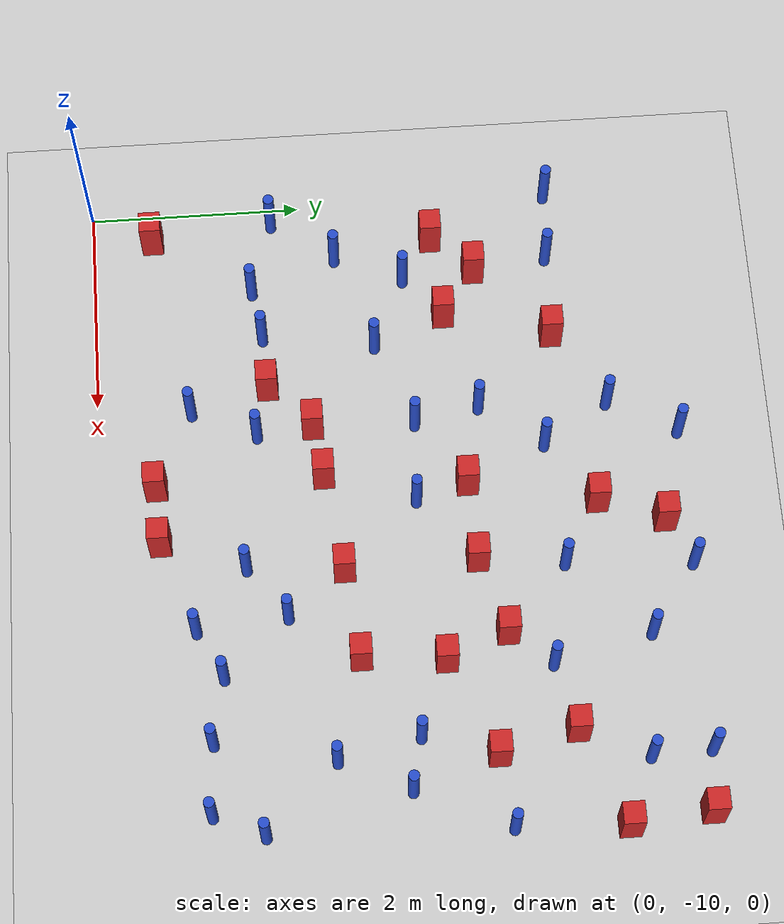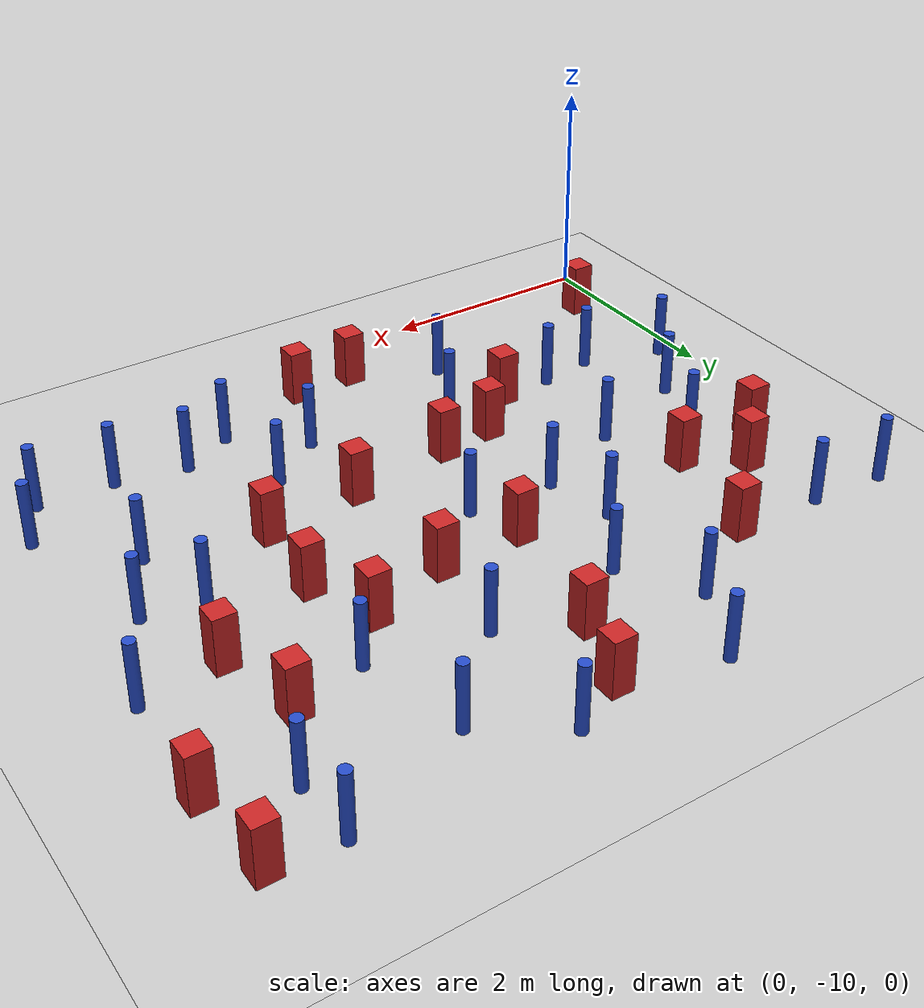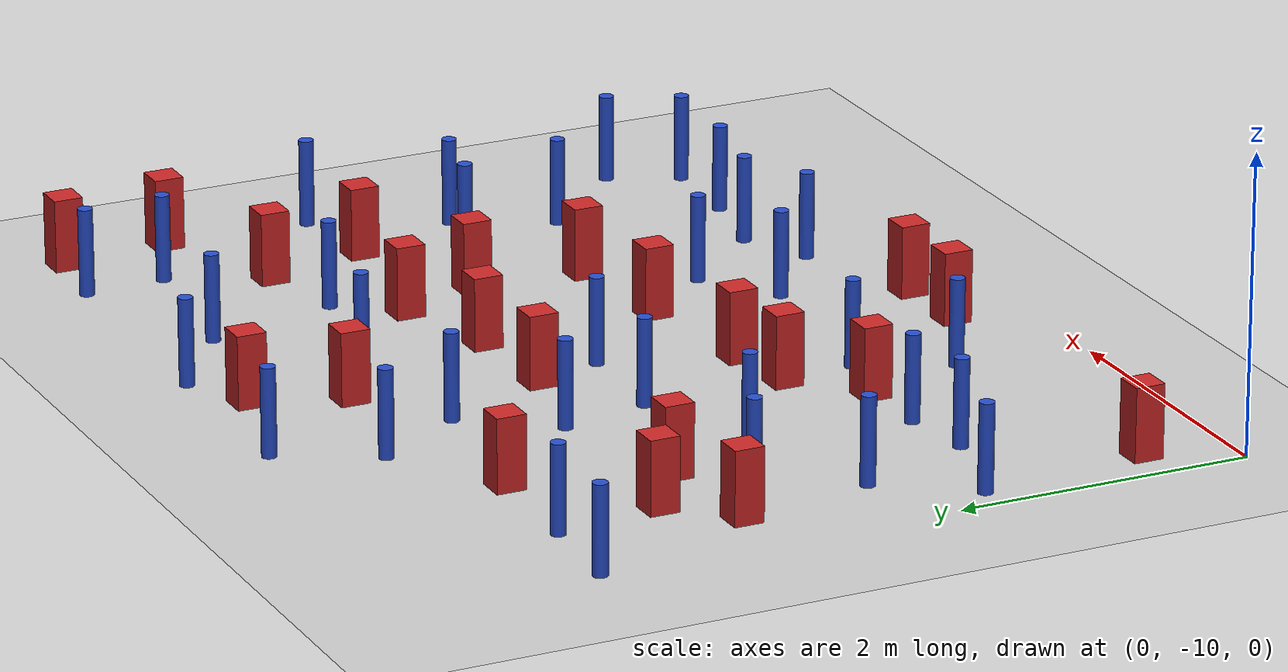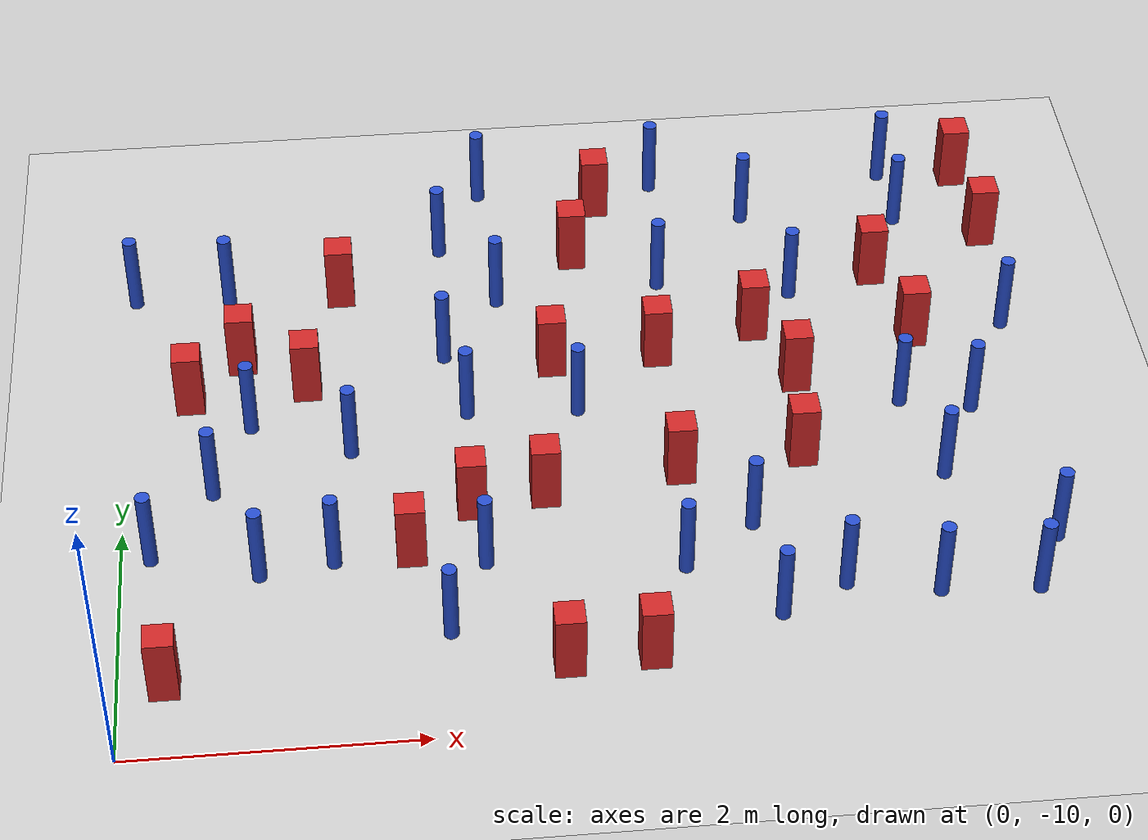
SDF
<sdf version="1.6">
 <world name="default">
  <model name="ground_plane">
   <static>1</static>
   <link name="link">
    <collision name="collision">
     <geometry><plane><normal>0 0 1</normal><size>100 100</size></plane></geometry>
     <surface><friction><ode><mu>100</mu><mu2>50</mu2></ode></friction></surface>
    </collision>
    <visual name="visual">
     <cast_shadows>0</cast_shadows>
     <geometry><plane><normal>0 0 1</normal><size>100 100</size></plane></geometry>
     <material>
      <ambient>1.0 1.0 1.0 1.0</ambient>
      <diffuse>0.8 0.8 0.8 1.0</diffuse>
      <specular>0.01 0.01 0.01 1.000000</specular>
     </material>
    </visual>
   </link>
  </model>
  <model name="pole_obstacle1">
   <static>true</static>
   <pose>2.42591077316 -8.50063717471 2.88873142074e-08 -9.90536692318e-09 4.6021994893e-07 -1.20965994988e-07</pose>
   <link name="link">
    <pose>0 0 0.3 0 -0 0</pose>
    <inertial>
     <mass>1</mass>
     <inertia><ixx>0.145833</ixx><ixy>0</ixy><ixz>0</ixz><iyy>0.145833</iyy><iyz>0</iyz><izz>0.125</izz></inertia>
    </inertial>
    <collision name="collision">
     <geometry><cylinder><radius>0.05</radius><length>.6</length></cylinder></geometry>
    </collision>
    <visual name="visual">
     <geometry><cylinder><radius>0.05</radius><length>.6</length></cylinder></geometry>
     <material>
      <script><name>Gazebo/Blue</name><uri>file://media/materials/scripts/gazebo.material</uri></script>
     </material>
    </visual>
   </link>
  </model>
  <model name="pole_obstacle4">
   <static>true</static>
   <pose>5.94569945255 -7.2721110719 2.88873142074e-08 -9.90536690842e-09 4.60219948965e-07 -1.20965994976e-07</pose>
   <link name="link">
    <pose>0 0 0.3 0 -0 0</pose>
    <inertial>
     <mass>1</mass>
     <inertia><ixx>0.145833</ixx><ixy>0</ixy><ixz>0</ixz><iyy>0.145833</iyy><iyz>0</iyz><izz>0.125</izz></inertia>
    </inertial>
    <collision name="collision">
     <geometry><cylinder><radius>0.05</radius><length>.6</length></cylinder></geometry>
    </collision>
    <visual name="visual">
     <geometry><cylinder><radius>0.05</radius><length>.6</length></cylinder></geometry>
     <material>
      <script><name>Gazebo/Blue</name><uri>file://media/materials/scripts/gazebo.material</uri></script>
     </material>
    </visual>
   </link>
  </model>
  <model name="pole_obstacle11">
   <static>true</static>
   <pose>6.33991685977 -6.39898442457 2.88873142074e-08 -9.90536690842e-09 4.60219948965e-07 -1.20965994976e-07</pose>
   <link name="link">
    <pose>0 0 0.3 0 -0 0</pose>
    <inertial>
     <mass>1</mass>
     <inertia><ixx>0.145833</ixx><ixy>0</ixy><ixz>0</ixz><iyy>0.145833</iyy><iyz>0</iyz><izz>0.125</izz></inertia>
    </inertial>
    <collision name="collision">
     <geometry><cylinder><radius>0.05</radius><length>.6</length></cylinder></geometry>
    </collision>
    <visual name="visual">
     <geometry><cylinder><radius>0.05</radius><length>.6</length></cylinder></geometry>
     <material>
      <script><name>Gazebo/Blue</name><uri>file://media/materials/scripts/gazebo.material</uri></script>
     </material>
    </visual>
   </link>
  </model>
  <model name="pole_obstacle15">
   <static>true</static>
   <pose>2.63196269383 -4.54886136414 2.88873142074e-08 -9.90536689859e-09 4.60219948989e-07 -1.20965994961e-07</pose>
   <link name="link">
    <pose>0 0 0.3 0 -0 0</pose>
    <inertial>
     <mass>1</mass>
     <inertia><ixx>0.145833</ixx><ixy>0</ixy><ixz>0</ixz><iyy>0.145833</iyy><iyz>0</iyz><izz>0.125</izz></inertia>
    </inertial>
    <collision name="collision">
     <geometry><cylinder><radius>0.05</radius><length>.6</length></cylinder></geometry>
    </collision>
    <visual name="visual">
     <geometry><cylinder><radius>0.05</radius><length>.6</length></cylinder></geometry>
     <material>
      <script><name>Gazebo/Blue</name><uri>file://media/materials/scripts/gazebo.material</uri></script>
     </material>
    </visual>
   </link>
  </model>
  <model name="pole_obstacle16">
   <static>true</static>
   <pose>2.15621258761 -9.10988371699 2.88873142074e-08 -9.90536692318e-09 4.6021994893e-07 -1.20965994988e-07</pose>
   <link name="link">
    <pose>0 0 0.3 0 -0 0</pose>
    <inertial>
     <mass>1</mass>
     <inertia><ixx>0.145833</ixx><ixy>0</ixy><ixz>0</ixz><iyy>0.145833</iyy><iyz>0</iyz><izz>0.125</izz></inertia>
    </inertial>
    <collision name="collision">
     <geometry><cylinder><radius>0.05</radius><length>.6</length></cylinder></geometry>
    </collision>
    <visual name="visual">
     <geometry><cylinder><radius>0.05</radius><length>.6</length></cylinder></geometry>
     <material>
      <script><name>Gazebo/Blue</name><uri>file://media/materials/scripts/gazebo.material</uri></script>
     </material>
    </visual>
   </link>
  </model>
  <model name="pole_obstacle19">
   <static>true</static>
   <pose>3.88683338803 -5.72605170219 2.88873142074e-08 -9.90536689859e-09 4.60219948989e-07 -1.20965994961e-07</pose>
   <link name="link">
    <pose>0 0 0.3 0 -0 0</pose>
    <inertial>
     <mass>1</mass>
     <inertia><ixx>0.145833</ixx><ixy>0</ixy><ixz>0</ixz><iyy>0.145833</iyy><iyz>0</iyz><izz>0.125</izz></inertia>
    </inertial>
    <collision name="collision">
     <geometry><cylinder><radius>0.05</radius><length>.6</length></cylinder></geometry>
    </collision>
    <visual name="visual">
     <geometry><cylinder><radius>0.05</radius><length>.6</length></cylinder></geometry>
     <material>
      <script><name>Gazebo/Blue</name><uri>file://media/materials/scripts/gazebo.material</uri></script>
     </material>
    </visual>
   </link>
  </model>
  <model name="square_post_obstacle30">
   <static>true</static>
   <pose>1.54722170927 -5.65805150016 8.22691968438e-08 7.2212513382e-06 -7.54495500217e-07 2.29674213826e-05</pose>
   <link name="link">
    <pose>0 0 0.25 0 -0 0</pose>
    <inertial>
     <mass>100</mass>
     <inertia>
      <ixx>0.166667</ixx>
      <ixy>0</ixy>
      <ixz>0</ixz>
      <iyy>0.166667</iyy>
      <iyz>0</iyz>
      <izz>0.166667</izz>
     </inertia>
    </inertial>
    <collision name="collision"><geometry><box><size>.2 .2 .5</size></box></geometry></collision>
    <visual name="visual">
     <geometry><box><size>.2 .2 .5</size></box></geometry>
     <material>
      <script><name>Gazebo/Red</name><uri>file://media/materials/scripts/gazebo.material</uri></script>
     </material>
    </visual>
   </link>
  </model>
  <model name="pole_obstacle22">
   <static>true</static>
   <pose>0.875757972067 -7.02750956753 2.88873142074e-08 -9.90536689661e-09 4.60219948993e-07 -1.20965994957e-07</pose>
   <link name="link">
    <pose>0 0 0.3 0 -0 0</pose>
    <inertial>
     <mass>1</mass>
     <inertia><ixx>0.145833</ixx><ixy>0</ixy><ixz>0</ixz><iyy>0.145833</iyy><iyz>0</iyz><izz>0.125</izz></inertia>
    </inertial>
    <collision name="collision">
     <geometry><cylinder><radius>0.05</radius><length>.6</length></cylinder></geometry>
    </collision>
    <visual name="visual">
     <geometry><cylinder><radius>0.05</radius><length>.6</length></cylinder></geometry>
     <material>
      <script><name>Gazebo/Blue</name><uri>file://media/materials/scripts/gazebo.material</uri></script>
     </material>
    </visual>
   </link>
  </model>
  <model name="pole_obstacle31">
   <static>true</static>
   <pose>4.84646633033 -5.91704571584 2.88873142074e-08 -9.90536690842e-09 4.60219948965e-07 -1.20965994976e-07</pose>
   <link name="link">
    <pose>0 0 0.3 0 -0 0</pose>
    <inertial>
     <mass>1</mass>
     <inertia><ixx>0.145833</ixx><ixy>0</ixy><ixz>0</ixz><iyy>0.145833</iyy><iyz>0</iyz><izz>0.125</izz></inertia>
    </inertial>
    <collision name="collision">
     <geometry><cylinder><radius>0.05</radius><length>.6</length></cylinder></geometry>
    </collision>
    <visual name="visual">
     <geometry><cylinder><radius>0.05</radius><length>.6</length></cylinder></geometry>
     <material>
      <script><name>Gazebo/Blue</name><uri>file://media/materials/scripts/gazebo.material</uri></script>
     </material>
    </visual>
   </link>
  </model>
  <model name="pole_obstacle43">
   <static>true</static>
   <pose>5.73983670717 -4.57400133261 2.88873142074e-08 -9.90536690842e-09 4.60219948965e-07 -1.20965994976e-07</pose>
   <link name="link">
    <pose>0 0 0.3 0 -0 0</pose>
    <inertial>
     <mass>1</mass>
     <inertia><ixx>0.145833</ixx><ixy>0</ixy><ixz>0</ixz><iyy>0.145833</iyy><iyz>0</iyz><izz>0.125</izz></inertia>
    </inertial>
    <collision name="collision">
     <geometry><cylinder><radius>0.05</radius><length>.6</length></cylinder></geometry>
    </collision>
    <visual name="visual">
     <geometry><cylinder><radius>0.05</radius><length>.6</length></cylinder></geometry>
     <material>
      <script><name>Gazebo/Blue</name><uri>file://media/materials/scripts/gazebo.material</uri></script>
     </material>
    </visual>
   </link>
  </model>
  <model name="pole_obstacle45">
   <static>true</static>
   <pose>4.24681315724 -8.29589934181 2.88873142074e-08 -9.9053668967e-09 4.60219948993e-07 -1.20965994957e-07</pose>
   <link name="link">
    <pose>0 0 0.3 0 -0 0</pose>
    <inertial>
     <mass>1</mass>
     <inertia><ixx>0.145833</ixx><ixy>0</ixy><ixz>0</ixz><iyy>0.145833</iyy><iyz>0</iyz><izz>0.125</izz></inertia>
    </inertial>
    <collision name="collision">
     <geometry><cylinder><radius>0.05</radius><length>.6</length></cylinder></geometry>
    </collision>
    <visual name="visual">
     <geometry><cylinder><radius>0.05</radius><length>.6</length></cylinder></geometry>
     <material>
      <script><name>Gazebo/Blue</name><uri>file://media/materials/scripts/gazebo.material</uri></script>
     </material>
    </visual>
   </link>
  </model>
  <model name="square_post_obstacle42">
   <static>true</static>
   <pose>3.81387432583 -7.75912440305 8.22691968438e-08 7.2212513382e-06 -7.54495500217e-07 2.29674213826e-05</pose>
   <link name="link">
    <pose>0 0 0.25 0 -0 0</pose>
    <inertial>
     <mass>100</mass>
     <inertia>
      <ixx>0.166667</ixx>
      <ixy>0</ixy>
      <ixz>0</ixz>
      <iyy>0.166667</iyy>
      <iyz>0</iyz>
      <izz>0.166667</izz>
     </inertia>
    </inertial>
    <collision name="collision"><geometry><box><size>.2 .2 .5</size></box></geometry></collision>
    <visual name="visual">
     <geometry><box><size>.2 .2 .5</size></box></geometry>
     <material>
      <script><name>Gazebo/Red</name><uri>file://media/materials/scripts/gazebo.material</uri></script>
     </material>
    </visual>
   </link>
  </model>
  <model name="pole_obstacle48">
   <static>true</static>
   <pose>5.63339297096 -7.92567552722 2.88873142074e-08 -9.90536690842e-09 4.60219948965e-07 -1.20965994976e-07</pose>
   <link name="link">
    <pose>0 0 0.3 0 -0 0</pose>
    <inertial>
     <mass>1</mass>
     <inertia><ixx>0.145833</ixx><ixy>0</ixy><ixz>0</ixz><iyy>0.145833</iyy><iyz>0</iyz><izz>0.125</izz></inertia>
    </inertial>
    <collision name="collision">
     <geometry><cylinder><radius>0.05</radius><length>.6</length></cylinder></geometry>
    </collision>
    <visual name="visual">
     <geometry><cylinder><radius>0.05</radius><length>.6</length></cylinder></geometry>
     <material>
      <script><name>Gazebo/Blue</name><uri>file://media/materials/scripts/gazebo.material</uri></script>
     </material>
    </visual>
   </link>
  </model>
  <model name="square_post_obstacle52">
   <static>true</static>
   <pose>0.821442402347 -6.34783365876 8.22691968438e-08 7.2212513382e-06 -7.54495500217e-07 2.29674213826e-05</pose>
   <link name="link">
    <pose>0 0 0.25 0 -0 0</pose>
    <inertial>
     <mass>100</mass>
     <inertia>
      <ixx>0.166667</ixx>
      <ixy>0</ixy>
      <ixz>0</ixz>
      <iyy>0.166667</iyy>
      <iyz>0</iyz>
      <izz>0.166667</izz>
     </inertia>
    </inertial>
    <collision name="collision"><geometry><box><size>.2 .2 .5</size></box></geometry></collision>
    <visual name="visual">
     <geometry><box><size>.2 .2 .5</size></box></geometry>
     <material>
      <script><name>Gazebo/Red</name><uri>file://media/materials/scripts/gazebo.material</uri></script>
     </material>
    </visual>
   </link>
  </model>
  <model name="square_post_obstacle60">
   <static>true</static>
   <pose>2.89592068642 -9.46200235587 8.22691968438e-08 7.22125133819e-06 -7.54495500217e-07 2.29674213826e-05</pose>
   <link name="link">
    <pose>0 0 0.25 0 -0 0</pose>
    <inertial>
     <mass>100</mass>
     <inertia>
      <ixx>0.166667</ixx>
      <ixy>0</ixy>
      <ixz>0</ixz>
      <iyy>0.166667</iyy>
      <iyz>0</iyz>
      <izz>0.166667</izz>
     </inertia>
    </inertial>
    <collision name="collision"><geometry><box><size>.2 .2 .5</size></box></geometry></collision>
    <visual name="visual">
     <geometry><box><size>.2 .2 .5</size></box></geometry>
     <material>
      <script><name>Gazebo/Red</name><uri>file://media/materials/scripts/gazebo.material</uri></script>
     </material>
    </visual>
   </link>
  </model>
  <model name="square_post_obstacle61">
   <static>true</static>
   <pose>5.47166792737 -5.76206164102 8.22691968438e-08 7.22125133819e-06 -7.54495500217e-07 2.29674213826e-05</pose>
   <link name="link">
    <pose>0 0 0.25 0 -0 0</pose>
    <inertial>
     <mass>100</mass>
     <inertia>
      <ixx>0.166667</ixx>
      <ixy>0</ixy>
      <ixz>0</ixz>
      <iyy>0.166667</iyy>
      <iyz>0</iyz>
      <izz>0.166667</izz>
     </inertia>
    </inertial>
    <collision name="collision"><geometry><box><size>.2 .2 .5</size></box></geometry></collision>
    <visual name="visual">
     <geometry><box><size>.2 .2 .5</size></box></geometry>
     <material>
      <script><name>Gazebo/Red</name><uri>file://media/materials/scripts/gazebo.material</uri></script>
     </material>
    </visual>
   </link>
  </model>
  <model name="pole_obstacle58">
   <static>true</static>
   <pose>0.0468298334432 -5.59046638063 2.88873142074e-08 -9.90536689796e-09 4.6021994899e-07 -1.20965994961e-07</pose>
   <link name="link">
    <pose>0 0 0.3 0 -0 0</pose>
    <inertial>
     <mass>1</mass>
     <inertia><ixx>0.145833</ixx><ixy>0</ixy><ixz>0</ixz><iyy>0.145833</iyy><iyz>0</iyz><izz>0.125</izz></inertia>
    </inertial>
    <collision name="collision">
     <geometry><cylinder><radius>0.05</radius><length>.6</length></cylinder></geometry>
    </collision>
    <visual name="visual">
     <geometry><cylinder><radius>0.05</radius><length>.6</length></cylinder></geometry>
     <material>
      <script><name>Gazebo/Blue</name><uri>file://media/materials/scripts/gazebo.material</uri></script>
     </material>
    </visual>
   </link>
  </model>
  <model name="square_post_obstacle64">
   <static>true</static>
   <pose>4.67546448075 -7.65855162713 8.22691968438e-08 7.2212513382e-06 -7.54495500217e-07 2.29674213826e-05</pose>
   <link name="link">
    <pose>0 0 0.25 0 -0 0</pose>
    <inertial>
     <mass>100</mass>
     <inertia>
      <ixx>0.166667</ixx>
      <ixy>0</ixy>
      <ixz>0</ixz>
      <iyy>0.166667</iyy>
      <iyz>0</iyz>
      <izz>0.166667</izz>
     </inertia>
    </inertial>
    <collision name="collision"><geometry><box><size>.2 .2 .5</size></box></geometry></collision>
    <visual name="visual">
     <geometry><box><size>.2 .2 .5</size></box></geometry>
     <material>
      <script><name>Gazebo/Red</name><uri>file://media/materials/scripts/gazebo.material</uri></script>
     </material>
    </visual>
   </link>
  </model>
  <model name="square_post_obstacle66">
   <static>true</static>
   <pose>2.36431062757 -7.97440526636 8.22691968438e-08 7.2212513382e-06 -7.54495500217e-07 2.29674213826e-05</pose>
   <link name="link">
    <pose>0 0 0.25 0 -0 0</pose>
    <inertial>
     <mass>100</mass>
     <inertia>
      <ixx>0.166667</ixx>
      <ixy>0</ixy>
      <ixz>0</ixz>
      <iyy>0.166667</iyy>
      <iyz>0</iyz>
      <izz>0.166667</izz>
     </inertia>
    </inertial>
    <collision name="collision"><geometry><box><size>.2 .2 .5</size></box></geometry></collision>
    <visual name="visual">
     <geometry><box><size>.2 .2 .5</size></box></geometry>
     <material>
      <script><name>Gazebo/Red</name><uri>file://media/materials/scripts/gazebo.material</uri></script>
     </material>
    </visual>
   </link>
  </model>
  <model name="pole_obstacle65">
   <static>true</static>
   <pose>5.40245872413 -9.02809396823 2.88873142074e-08 -9.9053668967e-09 4.60219948993e-07 -1.20965994957e-07</pose>
   <link name="link">
    <pose>0 0 0.3 0 -0 0</pose>
    <inertial>
     <mass>1</mass>
     <inertia><ixx>0.145833</ixx><ixy>0</ixy><ixz>0</ixz><iyy>0.145833</iyy><iyz>0</iyz><izz>0.125</izz></inertia>
    </inertial>
    <collision name="collision">
     <geometry><cylinder><radius>0.05</radius><length>.6</length></cylinder></geometry>
    </collision>
    <visual name="visual">
     <geometry><cylinder><radius>0.05</radius><length>.6</length></cylinder></geometry>
     <material>
      <script><name>Gazebo/Blue</name><uri>file://media/materials/scripts/gazebo.material</uri></script>
     </material>
    </visual>
   </link>
  </model>
  <model name="square_post_obstacle74">
   <static>true</static>
   <pose>4.74408689263 -6.88737826288 8.22691968438e-08 7.2212513382e-06 -7.54495500217e-07 2.29674213826e-05</pose>
   <link name="link">
    <pose>0 0 0.25 0 -0 0</pose>
    <inertial>
     <mass>100</mass>
     <inertia>
      <ixx>0.166667</ixx>
      <ixy>0</ixy>
      <ixz>0</ixz>
      <iyy>0.166667</iyy>
      <iyz>0</iyz>
      <izz>0.166667</izz>
     </inertia>
    </inertial>
    <collision name="collision"><geometry><box><size>.2 .2 .5</size></box></geometry></collision>
    <visual name="visual">
     <geometry><box><size>.2 .2 .5</size></box></geometry>
     <material>
      <script><name>Gazebo/Red</name><uri>file://media/materials/scripts/gazebo.material</uri></script>
     </material>
    </visual>
   </link>
  </model>
  <model name="pole_obstacle85">
   <static>true</static>
   <pose>3.17345925248 -7.0504673911 2.88873142074e-08 -9.90536689859e-09 4.60219948989e-07 -1.20965994961e-07</pose>
   <link name="link">
    <pose>0 0 0.3 0 -0 0</pose>
    <inertial>
     <mass>1</mass>
     <inertia><ixx>0.145833</ixx><ixy>0</ixy><ixz>0</ixz><iyy>0.145833</iyy><iyz>0</iyz><izz>0.125</izz></inertia>
    </inertial>
    <collision name="collision">
     <geometry><cylinder><radius>0.05</radius><length>.6</length></cylinder></geometry>
    </collision>
    <visual name="visual">
     <geometry><cylinder><radius>0.05</radius><length>.6</length></cylinder></geometry>
     <material>
      <script><name>Gazebo/Blue</name><uri>file://media/materials/scripts/gazebo.material</uri></script>
     </material>
    </visual>
   </link>
  </model>
  <model name="pole_obstacle88">
   <static>true</static>
   <pose>4.33021615819 -9.14010764335 2.88873142074e-08 -9.9053668967e-09 4.60219948993e-07 -1.20965994957e-07</pose>
   <link name="link">
    <pose>0 0 0.3 0 -0 0</pose>
    <inertial>
     <mass>1</mass>
     <inertia><ixx>0.145833</ixx><ixy>0</ixy><ixz>0</ixz><iyy>0.145833</iyy><iyz>0</iyz><izz>0.125</izz></inertia>
    </inertial>
    <collision name="collision">
     <geometry><cylinder><radius>0.05</radius><length>.6</length></cylinder></geometry>
    </collision>
    <visual name="visual">
     <geometry><cylinder><radius>0.05</radius><length>.6</length></cylinder></geometry>
     <material>
      <script><name>Gazebo/Blue</name><uri>file://media/materials/scripts/gazebo.material</uri></script>
     </material>
    </visual>
   </link>
  </model>
  <model name="pole_obstacle91">
   <static>true</static>
   <pose>4.61235405896 -4.9973440382 2.88873142074e-08 -9.90536690842e-09 4.60219948965e-07 -1.20965994976e-07</pose>
   <link name="link">
    <pose>0 0 0.3 0 -0 0</pose>
    <inertial>
     <mass>1</mass>
     <inertia><ixx>0.145833</ixx><ixy>0</ixy><ixz>0</ixz><iyy>0.145833</iyy><iyz>0</iyz><izz>0.125</izz></inertia>
    </inertial>
    <collision name="collision">
     <geometry><cylinder><radius>0.05</radius><length>.6</length></cylinder></geometry>
    </collision>
    <visual name="visual">
     <geometry><cylinder><radius>0.05</radius><length>.6</length></cylinder></geometry>
     <material>
      <script><name>Gazebo/Blue</name><uri>file://media/materials/scripts/gazebo.material</uri></script>
     </material>
    </visual>
   </link>
  </model>
  <model name="pole_obstacle104">
   <static>true</static>
   <pose>5.45461209563 -7.16449207315 2.88873142074e-08 -9.90536690842e-09 4.60219948965e-07 -1.20965994976e-07</pose>
   <link name="link">
    <pose>0 0 0.3 0 -0 0</pose>
    <inertial>
     <mass>1</mass>
     <inertia><ixx>0.145833</ixx><ixy>0</ixy><ixz>0</ixz><iyy>0.145833</iyy><iyz>0</iyz><izz>0.125</izz></inertia>
    </inertial>
    <collision name="collision">
     <geometry><cylinder><radius>0.05</radius><length>.6</length></cylinder></geometry>
    </collision>
    <visual name="visual">
     <geometry><cylinder><radius>0.05</radius><length>.6</length></cylinder></geometry>
     <material>
      <script><name>Gazebo/Blue</name><uri>file://media/materials/scripts/gazebo.material</uri></script>
     </material>
    </visual>
   </link>
  </model>
  <model name="square_post_obstacle94">
   <static>true</static>
   <pose>1.27769252155 -6.66860946533 8.22691968438e-08 7.2212513382e-06 -7.54495500217e-07 2.29674213826e-05</pose>
   <link name="link">
    <pose>0 0 0.25 0 -0 0</pose>
    <inertial>
     <mass>100</mass>
     <inertia>
      <ixx>0.166667</ixx>
      <ixy>0</ixy>
      <ixz>0</ixz>
      <iyy>0.166667</iyy>
      <iyz>0</iyz>
      <izz>0.166667</izz>
     </inertia>
    </inertial>
    <collision name="collision"><geometry><box><size>.2 .2 .5</size></box></geometry></collision>
    <visual name="visual">
     <geometry><box><size>.2 .2 .5</size></box></geometry>
     <material>
      <script><name>Gazebo/Red</name><uri>file://media/materials/scripts/gazebo.material</uri></script>
     </material>
    </visual>
   </link>
  </model>
  <model name="square_post_obstacle104">
   <static>true</static>
   <pose>6.29627381877 -4.63678928945 8.22691968438e-08 7.22125133819e-06 -7.54495500217e-07 2.29674213826e-05</pose>
   <link name="link">
    <pose>0 0 0.25 0 -0 0</pose>
    <inertial>
     <mass>100</mass>
     <inertia>
      <ixx>0.166667</ixx>
      <ixy>0</ixy>
      <ixz>0</ixz>
      <iyy>0.166667</iyy>
      <iyz>0</iyz>
      <izz>0.166667</izz>
     </inertia>
    </inertial>
    <collision name="collision"><geometry><box><size>.2 .2 .5</size></box></geometry></collision>
    <visual name="visual">
     <geometry><box><size>.2 .2 .5</size></box></geometry>
     <material>
      <script><name>Gazebo/Red</name><uri>file://media/materials/scripts/gazebo.material</uri></script>
     </material>
    </visual>
   </link>
  </model>
  <model name="square_post_obstacle108">
   <static>true</static>
   <pose>1.93378803866 -8.38054636904 8.22691968438e-08 7.22125133819e-06 -7.54495500217e-07 2.29674213826e-05</pose>
   <link name="link">
    <pose>0 0 0.25 0 -0 0</pose>
    <inertial>
     <mass>100</mass>
     <inertia>
      <ixx>0.166667</ixx>
      <ixy>0</ixy>
      <ixz>0</ixz>
      <iyy>0.166667</iyy>
      <iyz>0</iyz>
      <izz>0.166667</izz>
     </inertia>
    </inertial>
    <collision name="collision"><geometry><box><size>.2 .2 .5</size></box></geometry></collision>
    <visual name="visual">
     <geometry><box><size>.2 .2 .5</size></box></geometry>
     <material>
      <script><name>Gazebo/Red</name><uri>file://media/materials/scripts/gazebo.material</uri></script>
     </material>
    </visual>
   </link>
  </model>
  <model name="pole_obstacle122">
   <static>true</static>
   <pose>0.194609521674 -8.26870954095 2.88873142074e-08 -9.90536690875e-09 4.60219948965e-07 -1.20965994978e-07</pose>
   <link name="link">
    <pose>0 0 0.3 0 -0 0</pose>
    <inertial>
     <mass>1</mass>
     <inertia><ixx>0.145833</ixx><ixy>0</ixy><ixz>0</ixz><iyy>0.145833</iyy><iyz>0</iyz><izz>0.125</izz></inertia>
    </inertial>
    <collision name="collision">
     <geometry><cylinder><radius>0.05</radius><length>.6</length></cylinder></geometry>
    </collision>
    <visual name="visual">
     <geometry><cylinder><radius>0.05</radius><length>.6</length></cylinder></geometry>
     <material>
      <script><name>Gazebo/Blue</name><uri>file://media/materials/scripts/gazebo.material</uri></script>
     </material>
    </visual>
   </link>
  </model>
  <model name="pole_obstacle123">
   <static>true</static>
   <pose>2.26566526271 -6.40397473487 2.88873142074e-08 -9.90536689859e-09 4.60219948989e-07 -1.20965994961e-07</pose>
   <link name="link">
    <pose>0 0 0.3 0 -0 0</pose>
    <inertial>
     <mass>1</mass>
     <inertia><ixx>0.145833</ixx><ixy>0</ixy><ixz>0</ixz><iyy>0.145833</iyy><iyz>0</iyz><izz>0.125</izz></inertia>
    </inertial>
    <collision name="collision">
     <geometry><cylinder><radius>0.05</radius><length>.6</length></cylinder></geometry>
    </collision>
    <visual name="visual">
     <geometry><cylinder><radius>0.05</radius><length>.6</length></cylinder></geometry>
     <material>
      <script><name>Gazebo/Blue</name><uri>file://media/materials/scripts/gazebo.material</uri></script>
     </material>
    </visual>
   </link>
  </model>
  <model name="pole_obstacle125">
   <static>true</static>
   <pose>0.729081423939 -5.63401056482 2.88873142074e-08 -9.90536689661e-09 4.60219948993e-07 -1.20965994957e-07</pose>
   <link name="link">
    <pose>0 0 0.3 0 -0 0</pose>
    <inertial>
     <mass>1</mass>
     <inertia><ixx>0.145833</ixx><ixy>0</ixy><ixz>0</ixz><iyy>0.145833</iyy><iyz>0</iyz><izz>0.125</izz></inertia>
    </inertial>
    <collision name="collision">
     <geometry><cylinder><radius>0.05</radius><length>.6</length></cylinder></geometry>
    </collision>
    <visual name="visual">
     <geometry><cylinder><radius>0.05</radius><length>.6</length></cylinder></geometry>
     <material>
      <script><name>Gazebo/Blue</name><uri>file://media/materials/scripts/gazebo.material</uri></script>
     </material>
    </visual>
   </link>
  </model>
  <model name="pole_obstacle135">
   <static>true</static>
   <pose>3.9585466595 -4.5466361467 2.88873142074e-08 -9.90536690327e-09 4.60219948978e-07 -1.20965994969e-07</pose>
   <link name="link">
    <pose>0 0 0.3 0 -0 0</pose>
    <inertial>
     <mass>1</mass>
     <inertia><ixx>0.145833</ixx><ixy>0</ixy><ixz>0</ixz><iyy>0.145833</iyy><iyz>0</iyz><izz>0.125</izz></inertia>
    </inertial>
    <collision name="collision">
     <geometry><cylinder><radius>0.05</radius><length>.6</length></cylinder></geometry>
    </collision>
    <visual name="visual">
     <geometry><cylinder><radius>0.05</radius><length>.6</length></cylinder></geometry>
     <material>
      <script><name>Gazebo/Blue</name><uri>file://media/materials/scripts/gazebo.material</uri></script>
     </material>
    </visual>
   </link>
  </model>
  <model name="pole_obstacle139">
   <static>true</static>
   <pose>1.56623452454 -7.34113062217 2.88873142074e-08 -9.90536689852e-09 4.60219948989e-07 -1.2096599496e-07</pose>
   <link name="link">
    <pose>0 0 0.3 0 -0 0</pose>
    <inertial>
     <mass>1</mass>
     <inertia><ixx>0.145833</ixx><ixy>0</ixy><ixz>0</ixz><iyy>0.145833</iyy><iyz>0</iyz><izz>0.125</izz></inertia>
    </inertial>
    <collision name="collision">
     <geometry><cylinder><radius>0.05</radius><length>.6</length></cylinder></geometry>
    </collision>
    <visual name="visual">
     <geometry><cylinder><radius>0.05</radius><length>.6</length></cylinder></geometry>
     <material>
      <script><name>Gazebo/Blue</name><uri>file://media/materials/scripts/gazebo.material</uri></script>
     </material>
    </visual>
   </link>
  </model>
  <model name="pole_obstacle143">
   <static>true</static>
   <pose>0.610256985986 -7.67362917847 2.88873142074e-08 -9.90536689661e-09 4.60219948993e-07 -1.20965994957e-07</pose>
   <link name="link">
    <pose>0 0 0.3 0 -0 0</pose>
    <inertial>
     <mass>1</mass>
     <inertia><ixx>0.145833</ixx><ixy>0</ixy><ixz>0</ixz><iyy>0.145833</iyy><iyz>0</iyz><izz>0.125</izz></inertia>
    </inertial>
    <collision name="collision">
     <geometry><cylinder><radius>0.05</radius><length>.6</length></cylinder></geometry>
    </collision>
    <visual name="visual">
     <geometry><cylinder><radius>0.05</radius><length>.6</length></cylinder></geometry>
     <material>
      <script><name>Gazebo/Blue</name><uri>file://media/materials/scripts/gazebo.material</uri></script>
     </material>
    </visual>
   </link>
  </model>
  <model name="square_post_obstacle136">
   <static>true</static>
   <pose>3.02696672588 -6.56655635011 8.22691968438e-08 7.2212513382e-06 -7.54495500217e-07 2.29674213826e-05</pose>
   <link name="link">
    <pose>0 0 0.25 0 -0 0</pose>
    <inertial>
     <mass>100</mass>
     <inertia>
      <ixx>0.166667</ixx>
      <ixy>0</ixy>
      <ixz>0</ixz>
      <iyy>0.166667</iyy>
      <iyz>0</iyz>
      <izz>0.166667</izz>
     </inertia>
    </inertial>
    <collision name="collision"><geometry><box><size>.2 .2 .5</size></box></geometry></collision>
    <visual name="visual">
     <geometry><box><size>.2 .2 .5</size></box></geometry>
     <material>
      <script><name>Gazebo/Red</name><uri>file://media/materials/scripts/gazebo.material</uri></script>
     </material>
    </visual>
   </link>
  </model>
  <model name="pole_obstacle150">
   <static>true</static>
   <pose>5.76836640152 -5.12678289055 2.88873142074e-08 -9.90536690842e-09 4.60219948965e-07 -1.20965994976e-07</pose>
   <link name="link">
    <pose>0 0 0.3 0 -0 0</pose>
    <inertial>
     <mass>1</mass>
     <inertia><ixx>0.145833</ixx><ixy>0</ixy><ixz>0</ixz><iyy>0.145833</iyy><iyz>0</iyz><izz>0.125</izz></inertia>
    </inertial>
    <collision name="collision">
     <geometry><cylinder><radius>0.05</radius><length>.6</length></cylinder></geometry>
    </collision>
    <visual name="visual">
     <geometry><cylinder><radius>0.05</radius><length>.6</length></cylinder></geometry>
     <material>
      <script><name>Gazebo/Blue</name><uri>file://media/materials/scripts/gazebo.material</uri></script>
     </material>
    </visual>
   </link>
  </model>
  <model name="pole_obstacle154">
   <static>true</static>
   <pose>2.39464396893 -7.01355959331 2.88873142074e-08 -9.90536689859e-09 4.60219948989e-07 -1.20965994961e-07</pose>
   <link name="link">
    <pose>0 0 0.3 0 -0 0</pose>
    <inertial>
     <mass>1</mass>
     <inertia><ixx>0.145833</ixx><ixy>0</ixy><ixz>0</ixz><iyy>0.145833</iyy><iyz>0</iyz><izz>0.125</izz></inertia>
    </inertial>
    <collision name="collision">
     <geometry><cylinder><radius>0.05</radius><length>.6</length></cylinder></geometry>
    </collision>
    <visual name="visual">
     <geometry><cylinder><radius>0.05</radius><length>.6</length></cylinder></geometry>
     <material>
      <script><name>Gazebo/Blue</name><uri>file://media/materials/scripts/gazebo.material</uri></script>
     </material>
    </visual>
   </link>
  </model>
  <model name="square_post_obstacle148">
   <static>true</static>
   <pose>5.65416510397 -6.48351450138 8.22691968438e-08 7.2212513382e-06 -7.54495500217e-07 2.29674213826e-05</pose>
   <link name="link">
    <pose>0 0 0.25 0 -0 0</pose>
    <inertial>
     <mass>100</mass>
     <inertia>
      <ixx>0.166667</ixx>
      <ixy>0</ixy>
      <ixz>0</ixz>
      <iyy>0.166667</iyy>
      <iyz>0</iyz>
      <izz>0.166667</izz>
     </inertia>
    </inertial>
    <collision name="collision"><geometry><box><size>.2 .2 .5</size></box></geometry></collision>
    <visual name="visual">
     <geometry><box><size>.2 .2 .5</size></box></geometry>
     <material>
      <script><name>Gazebo/Red</name><uri>file://media/materials/scripts/gazebo.material</uri></script>
     </material>
    </visual>
   </link>
  </model>
  <model name="pole_obstacle157">
   <static>true</static>
   <pose>2.29760389699 -5.19435872439 2.88873142074e-08 -9.90536689859e-09 4.60219948989e-07 -1.20965994961e-07</pose>
   <link name="link">
    <pose>0 0 0.3 0 -0 0</pose>
    <inertial>
     <mass>1</mass>
     <inertia><ixx>0.145833</ixx><ixy>0</ixy><ixz>0</ixz><iyy>0.145833</iyy><iyz>0</iyz><izz>0.125</izz></inertia>
    </inertial>
    <collision name="collision">
     <geometry><cylinder><radius>0.05</radius><length>.6</length></cylinder></geometry>
    </collision>
    <visual name="visual">
     <geometry><cylinder><radius>0.05</radius><length>.6</length></cylinder></geometry>
     <material>
      <script><name>Gazebo/Blue</name><uri>file://media/materials/scripts/gazebo.material</uri></script>
     </material>
    </visual>
   </link>
  </model>
  <model name="pole_obstacle181">
   <static>true</static>
   <pose>0.918647163935 -8.4827346692 2.88873142074e-08 -9.90536690779e-09 4.60219948967e-07 -1.20965994975e-07</pose>
   <link name="link">
    <pose>0 0 0.3 0 -0 0</pose>
    <inertial>
     <mass>1</mass>
     <inertia><ixx>0.145833</ixx><ixy>0</ixy><ixz>0</ixz><iyy>0.145833</iyy><iyz>0</iyz><izz>0.125</izz></inertia>
    </inertial>
    <collision name="collision">
     <geometry><cylinder><radius>0.05</radius><length>.6</length></cylinder></geometry>
    </collision>
    <visual name="visual">
     <geometry><cylinder><radius>0.05</radius><length>.6</length></cylinder></geometry>
     <material>
      <script><name>Gazebo/Blue</name><uri>file://media/materials/scripts/gazebo.material</uri></script>
     </material>
    </visual>
   </link>
  </model>
  <model name="pole_obstacle183">
   <static>true</static>
   <pose>3.75053005485 -8.65750850725 2.88873142074e-08 -9.90536692318e-09 4.6021994893e-07 -1.20965994988e-07</pose>
   <link name="link">
    <pose>0 0 0.3 0 -0 0</pose>
    <inertial>
     <mass>1</mass>
     <inertia><ixx>0.145833</ixx><ixy>0</ixy><ixz>0</ixz><iyy>0.145833</iyy><iyz>0</iyz><izz>0.125</izz></inertia>
    </inertial>
    <collision name="collision">
     <geometry><cylinder><radius>0.05</radius><length>.6</length></cylinder></geometry>
    </collision>
    <visual name="visual">
     <geometry><cylinder><radius>0.05</radius><length>.6</length></cylinder></geometry>
     <material>
      <script><name>Gazebo/Blue</name><uri>file://media/materials/scripts/gazebo.material</uri></script>
     </material>
    </visual>
   </link>
  </model>
  <model name="pole_obstacle186">
   <static>true</static>
   <pose>2.68641579837 -5.81461310281 2.88873142074e-08 -9.90536689859e-09 4.60219948989e-07 -1.20965994961e-07</pose>
   <link name="link">
    <pose>0 0 0.3 0 -0 0</pose>
    <inertial>
     <mass>1</mass>
     <inertia><ixx>0.145833</ixx><ixy>0</ixy><ixz>0</ixz><iyy>0.145833</iyy><iyz>0</iyz><izz>0.125</izz></inertia>
    </inertial>
    <collision name="collision">
     <geometry><cylinder><radius>0.05</radius><length>.6</length></cylinder></geometry>
    </collision>
    <visual name="visual">
     <geometry><cylinder><radius>0.05</radius><length>.6</length></cylinder></geometry>
     <material>
      <script><name>Gazebo/Blue</name><uri>file://media/materials/scripts/gazebo.material</uri></script>
     </material>
    </visual>
   </link>
  </model>
  <model name="pole_obstacle187">
   <static>true</static>
   <pose>1.4167033136 -8.40395876532 2.88873142074e-08 -9.90536690474e-09 4.60219948974e-07 -1.2096599497e-07</pose>
   <link name="link">
    <pose>0 0 0.3 0 -0 0</pose>
    <inertial>
     <mass>1</mass>
     <inertia><ixx>0.145833</ixx><ixy>0</ixy><ixz>0</ixz><iyy>0.145833</iyy><iyz>0</iyz><izz>0.125</izz></inertia>
    </inertial>
    <collision name="collision">
     <geometry><cylinder><radius>0.05</radius><length>.6</length></cylinder></geometry>
    </collision>
    <visual name="visual">
     <geometry><cylinder><radius>0.05</radius><length>.6</length></cylinder></geometry>
     <material>
      <script><name>Gazebo/Blue</name><uri>file://media/materials/scripts/gazebo.material</uri></script>
     </material>
    </visual>
   </link>
  </model>
  <model name="square_post_obstacle180">
   <static>true</static>
   <pose>3.27701634795 -5.37693446077 8.22691968438e-08 7.2212513382e-06 -7.54495500217e-07 2.29674213826e-05</pose>
   <link name="link">
    <pose>0 0 0.25 0 -0 0</pose>
    <inertial>
     <mass>100</mass>
     <inertia>
      <ixx>0.166667</ixx>
      <ixy>0</ixy>
      <ixz>0</ixz>
      <iyy>0.166667</iyy>
      <iyz>0</iyz>
      <izz>0.166667</izz>
     </inertia>
    </inertial>
    <collision name="collision"><geometry><box><size>.2 .2 .5</size></box></geometry></collision>
    <visual name="visual">
     <geometry><box><size>.2 .2 .5</size></box></geometry>
     <material>
      <script><name>Gazebo/Red</name><uri>file://media/materials/scripts/gazebo.material</uri></script>
     </material>
    </visual>
   </link>
  </model>
  <model name="square_post_obstacle186">
   <static>true</static>
   <pose>6.37304014706 -5.38321564392 8.22691968438e-08 7.22125133819e-06 -7.54495500217e-07 2.29674213826e-05</pose>
   <link name="link">
    <pose>0 0 0.25 0 -0 0</pose>
    <inertial>
     <mass>100</mass>
     <inertia>
      <ixx>0.166667</ixx>
      <ixy>0</ixy>
      <ixz>0</ixz>
      <iyy>0.166667</iyy>
      <iyz>0</iyz>
      <izz>0.166667</izz>
     </inertia>
    </inertial>
    <collision name="collision"><geometry><box><size>.2 .2 .5</size></box></geometry></collision>
    <visual name="visual">
     <geometry><box><size>.2 .2 .5</size></box></geometry>
     <material>
      <script><name>Gazebo/Red</name><uri>file://media/materials/scripts/gazebo.material</uri></script>
     </material>
    </visual>
   </link>
  </model>
  <model name="square_post_obstacle192">
   <static>true</static>
   <pose>4.51448546316 -6.30979252395 8.22691968438e-08 7.22125133819e-06 -7.54495500217e-07 2.29674213826e-05</pose>
   <link name="link">
    <pose>0 0 0.25 0 -0 0</pose>
    <inertial>
     <mass>100</mass>
     <inertia>
      <ixx>0.166667</ixx>
      <ixy>0</ixy>
      <ixz>0</ixz>
      <iyy>0.166667</iyy>
      <iyz>0</iyz>
      <izz>0.166667</izz>
     </inertia>
    </inertial>
    <collision name="collision"><geometry><box><size>.2 .2 .5</size></box></geometry></collision>
    <visual name="visual">
     <geometry><box><size>.2 .2 .5</size></box></geometry>
     <material>
      <script><name>Gazebo/Red</name><uri>file://media/materials/scripts/gazebo.material</uri></script>
     </material>
    </visual>
   </link>
  </model>
  <model name="square_post_obstacle199">
   <static>true</static>
   <pose>2.87174312419 -7.89923345564 8.22691968438e-08 7.2212513382e-06 -7.54495500217e-07 2.29674213826e-05</pose>
   <link name="link">
    <pose>0 0 0.25 0 -0 0</pose>
    <inertial>
     <mass>100</mass>
     <inertia>
      <ixx>0.166667</ixx>
      <ixy>0</ixy>
      <ixz>0</ixz>
      <iyy>0.166667</iyy>
      <iyz>0</iyz>
      <izz>0.166667</izz>
     </inertia>
    </inertial>
    <collision name="collision"><geometry><box><size>.2 .2 .5</size></box></geometry></collision>
    <visual name="visual">
     <geometry><box><size>.2 .2 .5</size></box></geometry>
     <material>
      <script><name>Gazebo/Red</name><uri>file://media/materials/scripts/gazebo.material</uri></script>
     </material>
    </visual>
   </link>
  </model>
  <model name="pole_obstacle190">
   <static>true</static>
   <pose>4.78982410824 -8.9063849219 2.88873142074e-08 -9.9053668967e-09 4.60219948993e-07 -1.20965994957e-07</pose>
   <link name="link">
    <pose>0 0 0.3 0 -0 0</pose>
    <inertial>
     <mass>1</mass>
     <inertia><ixx>0.145833</ixx><ixy>0</ixy><ixz>0</ixz><iyy>0.145833</iyy><iyz>0</iyz><izz>0.125</izz></inertia>
    </inertial>
    <collision name="collision">
     <geometry><cylinder><radius>0.05</radius><length>.6</length></cylinder></geometry>
    </collision>
    <visual name="visual">
     <geometry><cylinder><radius>0.05</radius><length>.6</length></cylinder></geometry>
     <material>
      <script><name>Gazebo/Blue</name><uri>file://media/materials/scripts/gazebo.material</uri></script>
     </material>
    </visual>
   </link>
  </model>
  <model name="pole_obstacle194">
   <static>true</static>
   <pose>6.06309805669 -9.06021381227 2.88873142074e-08 -9.9053668967e-09 4.60219948993e-07 -1.20965994957e-07</pose>
   <link name="link">
    <pose>0 0 0.3 0 -0 0</pose>
    <inertial>
     <mass>1</mass>
     <inertia><ixx>0.145833</ixx><ixy>0</ixy><ixz>0</ixz><iyy>0.145833</iyy><iyz>0</iyz><izz>0.125</izz></inertia>
    </inertial>
    <collision name="collision">
     <geometry><cylinder><radius>0.05</radius><length>.6</length></cylinder></geometry>
    </collision>
    <visual name="visual">
     <geometry><cylinder><radius>0.05</radius><length>.6</length></cylinder></geometry>
     <material>
      <script><name>Gazebo/Blue</name><uri>file://media/materials/scripts/gazebo.material</uri></script>
     </material>
    </visual>
   </link>
  </model>
  <model name="pole_obstacle195">
   <static>true</static>
   <pose>6.27584825266 -8.595205737 2.88873142074e-08 -9.9053668967e-09 4.60219948993e-07 -1.20965994957e-07</pose>
   <link name="link">
    <pose>0 0 0.3 0 -0 0</pose>
    <inertial>
     <mass>1</mass>
     <inertia><ixx>0.145833</ixx><ixy>0</ixy><ixz>0</ixz><iyy>0.145833</iyy><iyz>0</iyz><izz>0.125</izz></inertia>
    </inertial>
    <collision name="collision">
     <geometry><cylinder><radius>0.05</radius><length>.6</length></cylinder></geometry>
    </collision>
    <visual name="visual">
     <geometry><cylinder><radius>0.05</radius><length>.6</length></cylinder></geometry>
     <material>
      <script><name>Gazebo/Blue</name><uri>file://media/materials/scripts/gazebo.material</uri></script>
     </material>
    </visual>
   </link>
  </model>
  <model name="square_post_obstacle206">
   <static>true</static>
   <pose>3.78975355249 -6.53019543377 8.22691968438e-08 7.2212513382e-06 -7.54495500217e-07 2.29674213826e-05</pose>
   <link name="link">
    <pose>0 0 0.25 0 -0 0</pose>
    <inertial>
     <mass>100</mass>
     <inertia>
      <ixx>0.166667</ixx>
      <ixy>0</ixy>
      <ixz>0</ixz>
      <iyy>0.166667</iyy>
      <iyz>0</iyz>
      <izz>0.166667</izz>
     </inertia>
    </inertial>
    <collision name="collision"><geometry><box><size>.2 .2 .5</size></box></geometry></collision>
    <visual name="visual">
     <geometry><box><size>.2 .2 .5</size></box></geometry>
     <material>
      <script><name>Gazebo/Red</name><uri>file://media/materials/scripts/gazebo.material</uri></script>
     </material>
    </visual>
   </link>
  </model>
  <model name="square_post_obstacle209">
   <static>true</static>
   <pose>0.452697319505 -6.73593500065 8.22691968438e-08 7.2212513382e-06 -7.54495500217e-07 2.29674213826e-05</pose>
   <link name="link">
    <pose>0 0 0.25 0 -0 0</pose>
    <inertial>
     <mass>100</mass>
     <inertia>
      <ixx>0.166667</ixx>
      <ixy>0</ixy>
      <ixz>0</ixz>
      <iyy>0.166667</iyy>
      <iyz>0</iyz>
      <izz>0.166667</izz>
     </inertia>
    </inertial>
    <collision name="collision"><geometry><box><size>.2 .2 .5</size></box></geometry></collision>
    <visual name="visual">
     <geometry><box><size>.2 .2 .5</size></box></geometry>
     <material>
      <script><name>Gazebo/Red</name><uri>file://media/materials/scripts/gazebo.material</uri></script>
     </material>
    </visual>
   </link>
  </model>
  <model name="square_post_obstacle214">
   <static>true</static>
   <pose>0.304302928987 -9.42087773802 8.22691968438e-08 7.22125133819e-06 -7.54495500217e-07 2.29674213826e-05</pose>
   <link name="link">
    <pose>0 0 0.25 0 -0 0</pose>
    <inertial>
     <mass>100</mass>
     <inertia>
      <ixx>0.166667</ixx>
      <ixy>0</ixy>
      <ixz>0</ixz>
      <iyy>0.166667</iyy>
      <iyz>0</iyz>
      <izz>0.166667</izz>
     </inertia>
    </inertial>
    <collision name="collision"><geometry><box><size>.2 .2 .5</size></box></geometry></collision>
    <visual name="visual">
     <geometry><box><size>.2 .2 .5</size></box></geometry>
     <material>
      <script><name>Gazebo/Red</name><uri>file://media/materials/scripts/gazebo.material</uri></script>
     </material>
    </visual>
   </link>
  </model>
  <model name="square_post_obstacle215">
   <static>true</static>
   <pose>3.50546986565 -4.76723850962 8.22691968438e-08 7.2212513382e-06 -7.54495500217e-07 2.29674213826e-05</pose>
   <link name="link">
    <pose>0 0 0.25 0 -0 0</pose>
    <inertial>
     <mass>100</mass>
     <inertia>
      <ixx>0.166667</ixx>
      <ixy>0</ixy>
      <ixz>0</ixz>
      <iyy>0.166667</iyy>
      <iyz>0</iyz>
      <izz>0.166667</izz>
     </inertia>
    </inertial>
    <collision name="collision"><geometry><box><size>.2 .2 .5</size></box></geometry></collision>
    <visual name="visual">
     <geometry><box><size>.2 .2 .5</size></box></geometry>
     <material>
      <script><name>Gazebo/Red</name><uri>file://media/materials/scripts/gazebo.material</uri></script>
     </material>
    </visual>
   </link>
  </model>
  <model name="square_post_obstacle216">
   <static>true</static>
   <pose>3.45135325994 -9.44089088487 8.22691968438e-08 7.22125133819e-06 -7.54495500217e-07 2.29674213826e-05</pose>
   <link name="link">
    <pose>0 0 0.25 0 -0 0</pose>
    <inertial>
     <mass>100</mass>
     <inertia>
      <ixx>0.166667</ixx>
      <ixy>0</ixy>
      <ixz>0</ixz>
      <iyy>0.166667</iyy>
      <iyz>0</iyz>
      <izz>0.166667</izz>
     </inertia>
    </inertial>
    <collision name="collision"><geometry><box><size>.2 .2 .5</size></box></geometry></collision>
    <visual name="visual">
     <geometry><box><size>.2 .2 .5</size></box></geometry>
     <material>
      <script><name>Gazebo/Red</name><uri>file://media/materials/scripts/gazebo.material</uri></script>
     </material>
    </visual>
   </link>
  </model>
 </world>
</sdf>
